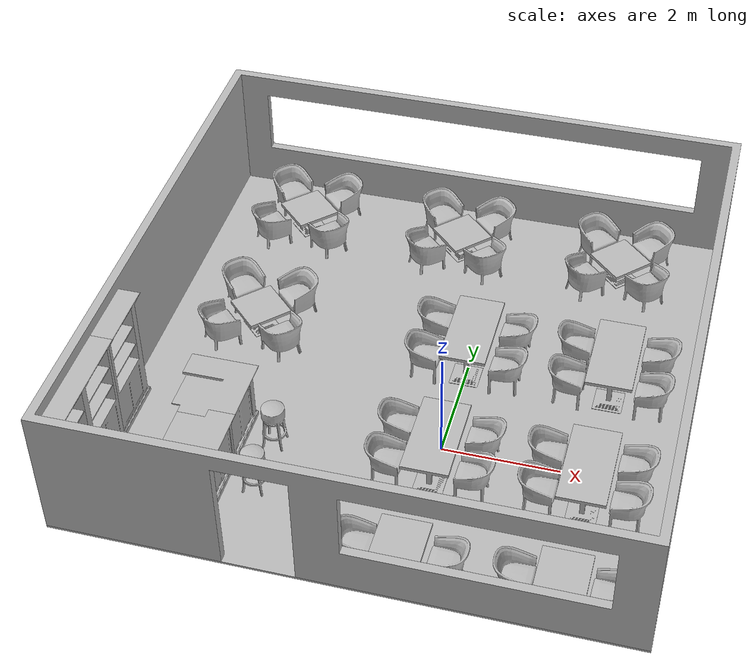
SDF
<?xml version="1.0" ?>
<sdf version='1.6'>
  <world name='default'>
    <gravity>0 0 -9.8</gravity>

    <model name='floor'>
      <static>1</static>
      <pose>0 0 0 0 0 0</pose> <!-- (x, y, z, roll, pitch, yaw)-->
      <link name='link_d0'>
        <collision concave='yes' name='collision_0'>
          <geometry>
            <mesh>
              <scale>1 1 1</scale>
              <uri>.\restaurantDescription\floor\floor.obj</uri>
            </mesh>
          </geometry>
        </collision>
        <visual name='visual'>
          <geometry>
            <mesh>
              <scale>1 1 1</scale>
              <uri>.\restaurantDescription\floor\floor.obj</uri>
            </mesh>
          </geometry>
        </visual>
      </link>
    </model>

    <model name='walls'>
      <static>1</static>
      <pose>0 0 0 0 0 0</pose> <!-- (x, y, z, roll, pitch, yaw)-->
      <link name='link_d0'>
        <collision concave='yes' name='collision_0'>
          <geometry>
            <mesh>
              <scale>1 1 1</scale>
              <uri>.\restaurantDescription\walls\walls.obj</uri>
            </mesh>
          </geometry>
        </collision>
        <visual name='visual'>
          <geometry>
            <mesh>
              <scale>1 1 1</scale>
              <uri>.\restaurantDescription\walls\walls.obj</uri>
            </mesh>
          </geometry>
        </visual>
      </link>
    </model>

    <model name='tables_high'>
      <static>1</static>
      <pose>0 0 0 0 0 0</pose> <!-- (x, y, z, roll, pitch, yaw)-->
      <link name='link_d0'>
        <collision concave='yes' name='collision_0'>
          <geometry>
            <mesh>
              <scale>1 1 1</scale>
              <uri>.\restaurantDescription\tables\high\high.obj</uri>
            </mesh>
          </geometry>
        </collision>
        <visual name='visual'>
          <geometry>
            <mesh>
              <scale>1 1 1</scale>
              <uri>.\restaurantDescription\tables\high\high.obj</uri>
            </mesh>
          </geometry>
        </visual>
      </link>
    </model>

    <model name='tables_low'>
      <static>1</static>
      <pose>0 0 0 0 0 0</pose> <!-- (x, y, z, roll, pitch, yaw)-->
      <link name='link_d0'>
        <collision concave='yes' name='collision_0'>
          <geometry>
            <mesh>
              <scale>1 1 1</scale>
              <uri>.\restaurantDescription\tables\low\low.obj</uri>
            </mesh>
          </geometry>
        </collision>
        <visual name='visual'>
          <geometry>
            <mesh>
              <scale>1 1 1</scale>
              <uri>.\restaurantDescription\tables\low\low.obj</uri>
            </mesh>
          </geometry>
        </visual>
      </link>
    </model>

    <model name='chairs_high'>
      <static>1</static>
      <pose>0 0 0 0 0 0</pose> <!-- (x, y, z, roll, pitch, yaw)-->
      <link name='link_d0'>
        <collision concave='yes' name='collision_0'>
          <geometry>
            <mesh>
              <scale>1 1 1</scale>
              <uri>.\restaurantDescription\chairs\high\high.obj</uri>
            </mesh>
          </geometry>
        </collision>
        <visual name='visual'>
          <geometry>
            <mesh>
              <scale>1 1 1</scale>
              <uri>.\restaurantDescription\chairs\high\high.obj</uri>
            </mesh>
          </geometry>
        </visual>
      </link>
    </model>

    <model name='chairs_low'>
      <static>1</static>
      <pose>0 0 0 0 0 0</pose> <!-- (x, y, z, roll, pitch, yaw)-->
      <link name='link_d0'>
        <collision concave='yes' name='collision_0'>
          <geometry>
            <mesh>
              <scale>1 1 1</scale>
              <uri>.\restaurantDescription\chairs\low\low.obj</uri>
            </mesh>
          </geometry>
        </collision>
        <visual name='visual'>
          <geometry>
            <mesh>
              <scale>1 1 1</scale>
              <uri>.\restaurantDescription\chairs\low\low.obj</uri>
            </mesh>
          </geometry>
        </visual>
      </link>
    </model>

    <model name='bar_center'>
      <static>1</static>
      <pose>0 0 0 0 0 0</pose> <!-- (x, y, z, roll, pitch, yaw)-->
      <link name='link_d0'>
        <collision concave='yes' name='collision_0'>
          <geometry>
            <mesh>
              <scale>1 1 1</scale>
              <uri>.\restaurantDescription\bar\center\center.obj</uri>
            </mesh>
          </geometry>
        </collision>
        <visual name='visual'>
          <geometry>
            <mesh>
              <scale>1 1 1</scale>
              <uri>.\restaurantDescription\bar\center\center.obj</uri>
            </mesh>
          </geometry>
        </visual>
      </link>
    </model>

    <model name='bar_side'>
      <static>1</static>
      <pose>0 0 0 0 0 0</pose> <!-- (x, y, z, roll, pitch, yaw)-->
      <link name='link_d0'>
        <collision concave='yes' name='collision_0'>
          <geometry>
            <mesh>
              <scale>1 1 1</scale>
              <uri>.\restaurantDescription\bar\side\side.obj</uri>
            </mesh>
          </geometry>
        </collision>
        <visual name='visual'>
          <geometry>
            <mesh>
              <scale>1 1 1</scale>
              <uri>.\restaurantDescription\bar\side\side.obj</uri>
            </mesh>
          </geometry>
        </visual>
      </link>
    </model>

    <model name='shelf_mid'>
      <static>1</static>
      <pose>0 0 0 0 0 0</pose> <!-- (x, y, z, roll, pitch, yaw)-->
      <link name='link_d0'>
        <collision concave='yes' name='collision_0'>
          <geometry>
            <mesh>
              <scale>1 1 1</scale>
              <uri>.\restaurantDescription\shelf\mid\mid.obj</uri>
            </mesh>
          </geometry>
        </collision>
        <visual name='visual'>
          <geometry>
            <mesh>
              <scale>1 1 1</scale>
              <uri>.\restaurantDescription\shelf\mid\mid.obj</uri>
            </mesh>
          </geometry>
        </visual>
      </link>
    </model>

    <model name='shelf_side'>
      <static>1</static>
      <pose>0 0 0 0 0 0</pose> <!-- (x, y, z, roll, pitch, yaw)-->
      <link name='link_d0'>
        <collision concave='yes' name='collision_0'>
          <geometry>
            <mesh>
              <scale>1 1 1</scale>
              <uri>.\restaurantDescription\shelf\side\side.obj</uri>
            </mesh>
          </geometry>
        </collision>
        <visual name='visual'>
          <geometry>
            <mesh>
              <scale>1 1 1</scale>
              <uri>.\restaurantDescription\shelf\side\side.obj</uri>
            </mesh>
          </geometry>
        </visual>
      </link>
    </model>

    <model name='stools'>
      <static>1</static>
      <pose>0 0 0 0 0 0</pose> <!-- (x, y, z, roll, pitch, yaw)-->
      <link name='link_d0'>
        <collision concave='yes' name='collision_0'>
          <geometry>
            <mesh>
              <scale>1 1 1</scale>
              <uri>.\restaurantDescription\stools\stools.obj</uri>
            </mesh>
          </geometry>
        </collision>
        <visual name='visual'>
          <geometry>
            <mesh>
              <scale>1 1 1</scale>
              <uri>.\restaurantDescription\stools\stools.obj</uri>
            </mesh>
          </geometry>
        </visual>
      </link>
    </model>

  </world>
</sdf>
